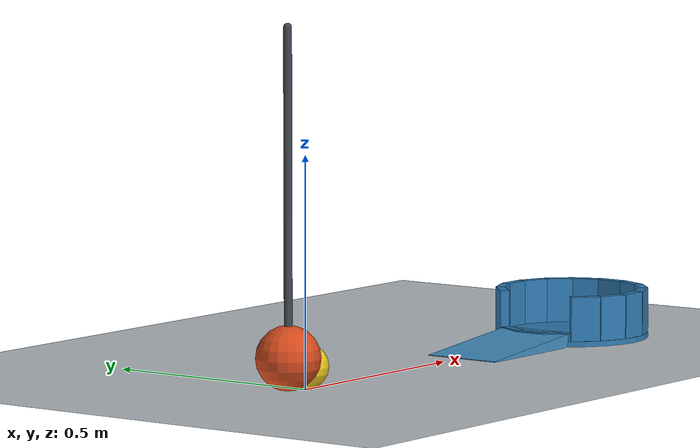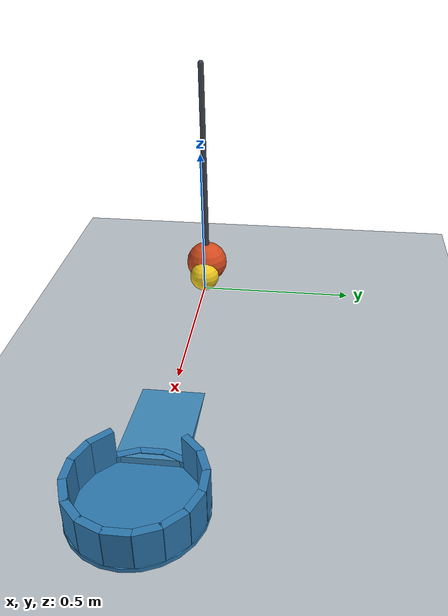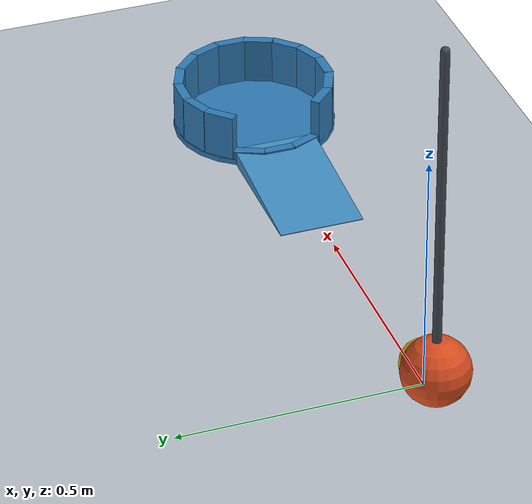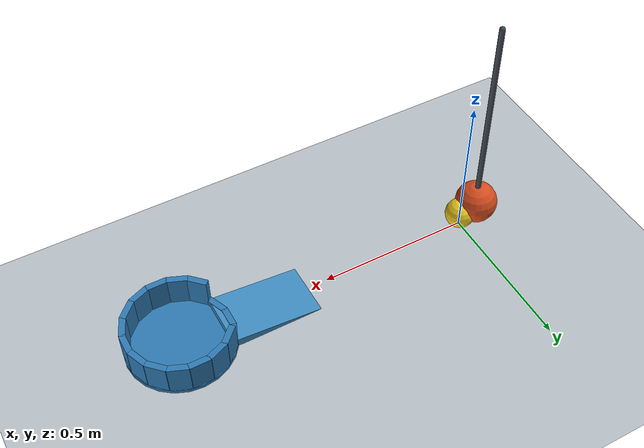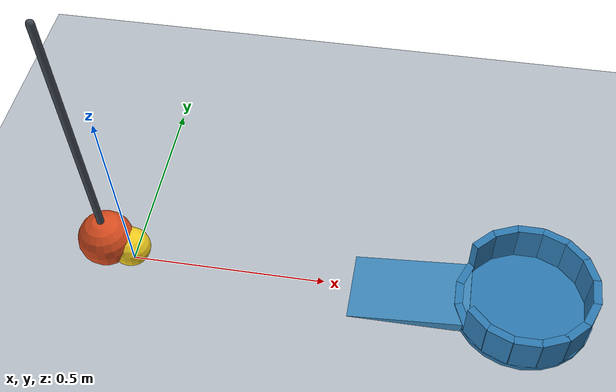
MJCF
<mujoco model="pendulum_ball_cup">
  <compiler angle="radian"/>
  <option timestep="0.002" gravity="0 0 -9.81" integrator="implicitfast" solver="Newton" iterations="80" tolerance="1e-10"/>
  <visual>
    <headlight ambient="0.4 0.4 0.4" diffuse="0.7 0.7 0.7"/>
  </visual>

  <worldbody>
    <light name="overhead" pos="0.5 -1 3" dir="0 0 -1"/>
    <camera name="overview" pos="0.5 -3 1.8" xyaxes="1 0 0 0 0.45 0.893"/>
    <geom name="floor" type="plane" size="3 2 0.1" friction="0.45 0.002 0.0001" condim="6" solref="0.01 1" rgba="0.72 0.75 0.78 1"/>

    <!-- Positive hinge angle raises the pendulum to the left of the ball. -->
    <body name="pendulum" pos="-0.06 0 0.775">
      <joint name="pendulum_hinge" type="hinge" axis="0 1 0" limited="false" damping="0.015" armature="0.001"/>
      <geom name="pendulum_rod" type="capsule" fromto="0 0 0 0 0 -0.7" size="0.009" mass="0.055" friction="0.4 0.002 0.0001" solref="0.01 1" rgba="0.25 0.28 0.32 1"/>
      <geom name="pendulum_bob" type="sphere" pos="0 0 -0.7" size="0.07" mass="0.7" friction="0.4 0.002 0.0001" solref="0.01 1" rgba="0.85 0.3 0.12 1"/>
    </body>

    <body name="ball" pos="0 0 0.05">
      <freejoint name="ball_free"/>
      <geom name="ball" type="sphere" size="0.05" mass="0.12" friction="0.45 0.002 0.0001" condim="6" solref="0.01 1" rgba="0.95 0.8 0.12 1"/>
    </body>

    <!-- The cup centre is 1 m from the ball's initial centre in the floor plane. -->
    <!-- A shallow entry ramp crosses the low front rim into the enclosed cup. -->
    <body name="cup" pos="1 0 0">
      <geom name="cup_bottom" type="cylinder" pos="0 0 0.006" size="0.174 0.006" friction="0.8 0.005 0.004" condim="6" solref="0.015 1" rgba="0.18 0.48 0.7 1"/>
      <geom name="cup_entry_ramp" type="box" pos="-0.28 0 0.001" quat="0.99875026 0 -0.04997917 0" size="0.15 0.09 0.014" friction="0.5 0.003 0.0001" condim="6" solref="0.01 1" rgba="0.25 0.55 0.75 1"/>

      <geom name="cup_wall_00" type="box" pos="0.16 0 0.062" size="0.01 0.033 0.05" friction="0.8 0.005 0.004" condim="6" solref="0.015 1" rgba="0.18 0.48 0.7 1"/>
      <geom name="cup_wall_01" type="box" pos="0.14782073 0.06122935 0.062" quat="0.98078528 0 0 0.19509032" size="0.01 0.033 0.05" friction="0.8 0.005 0.004" condim="6" solref="0.015 1" rgba="0.18 0.48 0.7 1"/>
      <geom name="cup_wall_02" type="box" pos="0.11313708 0.11313708 0.062" quat="0.92387953 0 0 0.38268343" size="0.01 0.033 0.05" friction="0.8 0.005 0.004" condim="6" solref="0.015 1" rgba="0.18 0.48 0.7 1"/>
      <geom name="cup_wall_03" type="box" pos="0.06122935 0.14782073 0.062" quat="0.83146961 0 0 0.55557023" size="0.01 0.033 0.05" friction="0.8 0.005 0.004" condim="6" solref="0.015 1" rgba="0.18 0.48 0.7 1"/>
      <geom name="cup_wall_04" type="box" pos="0 0.16 0.062" quat="0.70710678 0 0 0.70710678" size="0.01 0.033 0.05" friction="0.8 0.005 0.004" condim="6" solref="0.015 1" rgba="0.18 0.48 0.7 1"/>
      <geom name="cup_wall_05" type="box" pos="-0.06122935 0.14782073 0.062" quat="0.55557023 0 0 0.83146961" size="0.01 0.033 0.05" friction="0.8 0.005 0.004" condim="6" solref="0.015 1" rgba="0.18 0.48 0.7 1"/>
      <geom name="cup_wall_06" type="box" pos="-0.11313708 0.11313708 0.062" quat="0.38268343 0 0 0.92387953" size="0.01 0.033 0.05" friction="0.8 0.005 0.004" condim="6" solref="0.015 1" rgba="0.18 0.48 0.7 1"/>

      <geom name="cup_low_rim_07" type="box" pos="-0.14782073 0.06122935 0.021" quat="0.19509032 0 0 0.98078528" size="0.01 0.033 0.009" friction="0.8 0.005 0.004" condim="6" solref="0.015 1" rgba="0.18 0.48 0.7 1"/>
      <geom name="cup_low_rim_08" type="box" pos="-0.16 0 0.021" quat="0 0 0 1" size="0.01 0.033 0.009" friction="0.8 0.005 0.004" condim="6" solref="0.015 1" rgba="0.18 0.48 0.7 1"/>
      <geom name="cup_low_rim_09" type="box" pos="-0.14782073 -0.06122935 0.021" quat="-0.19509032 0 0 0.98078528" size="0.01 0.033 0.009" friction="0.8 0.005 0.004" condim="6" solref="0.015 1" rgba="0.18 0.48 0.7 1"/>

      <geom name="cup_wall_10" type="box" pos="-0.11313708 -0.11313708 0.062" quat="-0.38268343 0 0 0.92387953" size="0.01 0.033 0.05" friction="0.8 0.005 0.004" condim="6" solref="0.015 1" rgba="0.18 0.48 0.7 1"/>
      <geom name="cup_wall_11" type="box" pos="-0.06122935 -0.14782073 0.062" quat="-0.55557023 0 0 0.83146961" size="0.01 0.033 0.05" friction="0.8 0.005 0.004" condim="6" solref="0.015 1" rgba="0.18 0.48 0.7 1"/>
      <geom name="cup_wall_12" type="box" pos="0 -0.16 0.062" quat="-0.70710678 0 0 0.70710678" size="0.01 0.033 0.05" friction="0.8 0.005 0.004" condim="6" solref="0.015 1" rgba="0.18 0.48 0.7 1"/>
      <geom name="cup_wall_13" type="box" pos="0.06122935 -0.14782073 0.062" quat="-0.83146961 0 0 0.55557023" size="0.01 0.033 0.05" friction="0.8 0.005 0.004" condim="6" solref="0.015 1" rgba="0.18 0.48 0.7 1"/>
      <geom name="cup_wall_14" type="box" pos="0.11313708 -0.11313708 0.062" quat="-0.92387953 0 0 0.38268343" size="0.01 0.033 0.05" friction="0.8 0.005 0.004" condim="6" solref="0.015 1" rgba="0.18 0.48 0.7 1"/>
      <geom name="cup_wall_15" type="box" pos="0.14782073 -0.06122935 0.062" quat="-0.98078528 0 0 0.19509032" size="0.01 0.033 0.05" friction="0.8 0.005 0.004" condim="6" solref="0.015 1" rgba="0.18 0.48 0.7 1"/>
    </body>
  </worldbody>

  <keyframe>
    <key name="start" qpos="0.65 0 0 0.05 1 0 0 0" qvel="0 0 0 0 0 0 0"/>
  </keyframe>
</mujoco>
